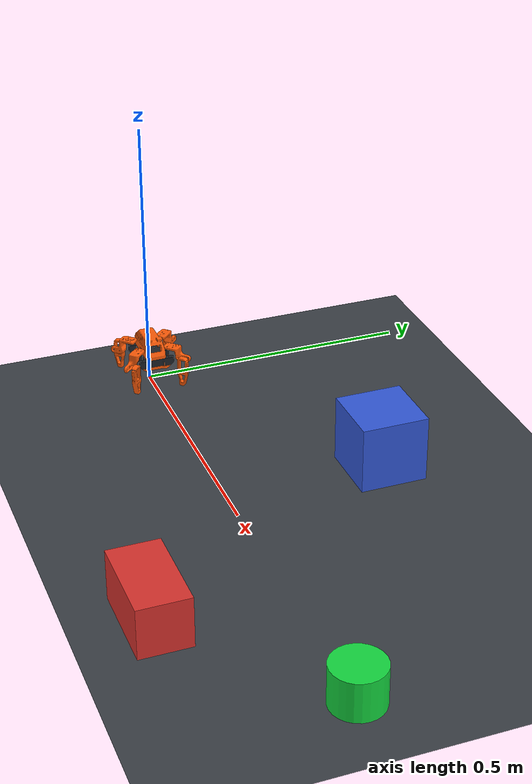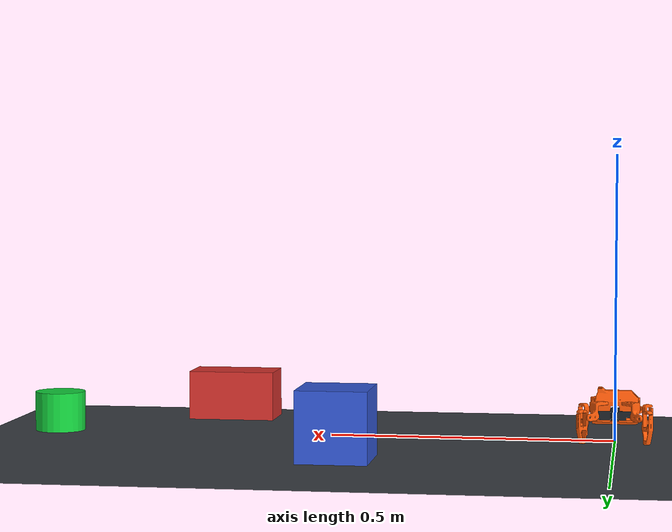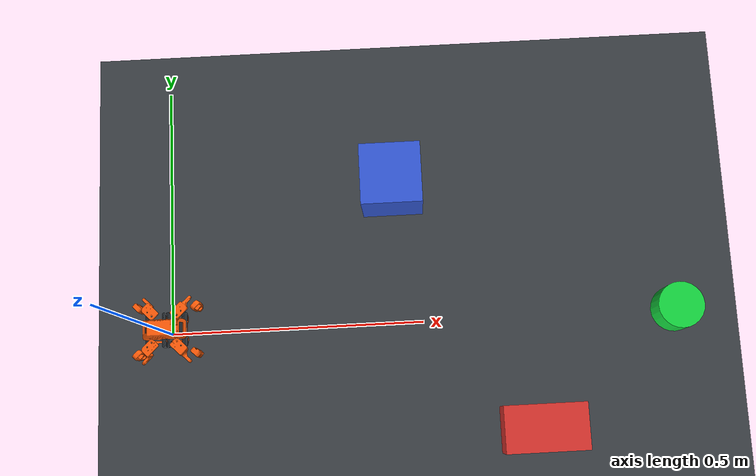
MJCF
<mujoco model="sesame_quadruped">
  <compiler angle="radian" coordinate="local" autolimits="true" inertiafromgeom="false"/>
  <option timestep="0.002" integrator="implicitfast" cone="elliptic" iterations="50"
          ls_iterations="10" gravity="0 0 -9.81"/>
  <size njmax="1000" nconmax="200"/>

  <visual>
    <global offwidth="640" offheight="480" azimuth="135" elevation="-25"/>
    <quality shadowsize="2048"/>
    <headlight ambient="0.35 0.35 0.35" diffuse="0.7 0.7 0.7" specular="0.2 0.2 0.2"/>
  </visual>

  <default>
    <default class="visual">
      <geom type="mesh" contype="0" conaffinity="0" group="2" density="0"/>
    </default>
    <default class="collision">
      <geom contype="1" conaffinity="1" group="3" condim="4" friction="0.9 0.02 0.002"
            solref="0.004 1" solimp="0.95 0.99 0.001" density="0" rgba="0 0 0 0"/>
    </default>
    <default class="servo">
      <joint type="hinge" axis="0 0 -1" limited="true" damping="0.0025" armature="0.00002"
             frictionloss="0.002"/>
    </default>
    <default class="foot">
      <geom type="sphere" size="0.007" contype="1" conaffinity="1" group="3" condim="6"
            friction="1.1 0.003 0.0002" solref="0.004 1" solimp="0.95 0.99 0.001"
            density="0" rgba="0.12 0.12 0.12 1"/>
      <site type="sphere" size="0.008" rgba="0 0 0 0" group="4"/>
    </default>
  </default>

  <!-- Printing STLs are millimetres in x-right/y-up/z-depth. Rx(+90deg) converts them
       to the CAD/MuJoCo x/y/z convention. The loader supplies these repository assets. -->
  <asset>
    <texture name="skybox" type="skybox" builtin="gradient" rgb1="0.38 0.48 0.60"
             rgb2="0.06 0.07 0.09" width="512" height="3072"/>
    <texture name="ground_tex" type="2d" builtin="checker" rgb1="0.18 0.20 0.22"
             rgb2="0.28 0.30 0.32" width="512" height="512"/>
    <material name="ground_mat" texture="ground_tex" texrepeat="8 8" reflectance="0.08"/>
    <material name="orange" rgba="1 0.36 0.035 1" roughness="0.72"/>
    <material name="charcoal" rgba="0.12 0.14 0.16 1" roughness="0.78"/>
    <material name="goal_mat" rgba="0.08 0.85 0.25 1" emission="0.15"/>

    <mesh name="internal_frame_mesh" file="Internal-Frame-v121.stl" scale="0.001 0.001 0.001"/>
    <mesh name="bottom_cover_mesh" file="Bottom-Cover-v121.stl" scale="0.001 0.001 0.001"/>
    <mesh name="top_cover_mesh" file="Top-Cover-Enclosed-v117.stl" scale="0.001 0.001 0.001"/>
    <mesh name="l1_mesh" file="L1-v117.stl" scale="0.001 0.001 0.001"/>
    <mesh name="l2_mesh" file="L2-v117.stl" scale="0.001 0.001 0.001"/>
    <mesh name="l3_mesh" file="L3-v117.stl" scale="0.001 0.001 0.001"/>
    <mesh name="l4_mesh" file="L4-v117.stl" scale="0.001 0.001 0.001"/>
    <mesh name="r1_mesh" file="R1-v117.stl" scale="0.001 0.001 0.001"/>
    <mesh name="r2_mesh" file="R2-v117.stl" scale="0.001 0.001 0.001"/>
    <mesh name="r3_mesh" file="R3-v117.stl" scale="0.001 0.001 0.001"/>
    <mesh name="r4_mesh" file="R4-v117.stl" scale="0.001 0.001 0.001"/>
  </asset>

  <worldbody>
    <light name="key" pos="-1 -1 2.5" dir="0.4 0.4 -1" directional="true" castshadow="true"/>
    <light name="fill" pos="1 1 1.2" dir="-0.5 -0.3 -1" directional="true" diffuse="0.35 0.38 0.42"/>
    <geom name="floor" type="plane" size="8 8 0.1" material="ground_mat" contype="1"
          conaffinity="1" condim="4" friction="1.0 0.02 0.002"/>

    <body name="target" mocap="true" pos="1 0 0.035">
      <geom name="target_visual" type="cylinder" size="0.045 0.035" material="goal_mat"
            contype="0" conaffinity="0" group="2"/>
      <site name="goal" pos="0 0 0" size="0.006" rgba="0 1 0 0"/>
    </body>

    <body name="obstacle_0" pos="0.45 0.28 0.06">
      <geom type="box" size="0.06 0.06 0.06" rgba="0.2 0.35 0.85 1" friction="0.9"/>
    </body>
    <body name="obstacle_1" pos="0.72 -0.22 0.045">
      <geom type="box" size="0.08 0.045 0.045" rgba="0.85 0.2 0.18 1" friction="0.9"/>
    </body>

    <body name="base" pos="0 0 0.049">
      <freejoint name="root"/>
      <inertial pos="0 0 0.006" mass="0.280" diaginertia="0.000143 0.000178 0.000264"/>

      <geom name="body_collision" class="collision" type="box" pos="0.001 0.004 0.0145"
            size="0.042 0.034 0.031"/>
      <geom name="internal_frame_visual" class="visual" mesh="internal_frame_mesh"
            pos="0.0256198 0.00238918 -0.0151121"
            quat="0 0 0.707106781 0.707106781" material="charcoal"/>
      <geom name="bottom_cover_visual" class="visual" mesh="bottom_cover_mesh"
            pos="0.0256198 0.00238918 -0.0151121"
            quat="0 0 0.707106781 0.707106781" material="orange"/>
      <geom name="top_cover_visual" class="visual" mesh="top_cover_mesh"
            pos="0.0256198 0.00238918 -0.0151121"
            quat="0 0 0.707106781 0.707106781" material="orange"/>

      <site name="imu" pos="0 0 0.025" size="0.004" rgba="0.2 0.8 1 0.35" group="4"/>
      <camera name="front_camera" pos="0.048 0 0.030"
              xyaxes="0 -1 0 0.342 0 0.940" fovy="82"/>

      <!-- Front right: R1 -> R3. -->
      <body name="r1_link" pos="0.0240966 -0.0206276 0.0179057" quat="0 0 1 0">
        <inertial pos="-0.010 -0.016 0.005" mass="0.020" diaginertia="0.0000022 0.0000048 0.0000057"/>
        <joint name="R1" class="servo" range="0.785398163 3.141592654" ref="2.356194490"/>
        <geom name="r1_visual" class="visual" mesh="r1_mesh"
              pos="0.0173524 0.0151982 0.0330178"
              quat="-0.27059805 0.27059805 0.653281482 -0.653281482" material="orange"/>
        <geom name="r1_collision" class="collision" type="capsule"
              fromto="0 0 0 -0.0207104 -0.0313751 0.01779" size="0.010"/>
        <body name="r3_link" pos="-0.0207104 -0.0313751 0.01779"
              quat="0.27059805 -0.27059805 0.653281482 -0.653281482">
          <inertial pos="-0.002 -0.024 -0.016" mass="0.006" diaginertia="0.00000023 0.00000175 0.00000186"/>
        <joint name="R3" class="servo" range="-0.087266463 3.228859116" ref="3.141592654"/>
          <geom name="r3_visual" class="visual" mesh="r3_mesh"
                pos="-0.0152278 0.0598468 -0.00728707"
                quat="0.5 0.5 0.5 -0.5" material="orange"/>
          <geom name="r3_shin" class="collision" type="capsule"
                fromto="0 0 0 -0.0016 -0.04006 -0.016" size="0.006"/>
          <geom name="r3_foot" class="foot" pos="-0.0016 -0.04006 -0.016"/>
          <site name="r3_contact" class="foot" pos="-0.0016 -0.04006 -0.016"/>
        </body>
      </body>

      <!-- Rear right: R2 -> R4. -->
      <body name="r2_link" pos="-0.0243034 -0.0206276 0.0179057" quat="0 1 0 0">
        <inertial pos="-0.010 0.016 0.005" mass="0.020" diaginertia="0.0000022 0.0000048 0.0000057"/>
        <joint name="R2" class="servo" range="0 2.356194490" ref="0.785398163"/>
        <geom name="r2_visual" class="visual" mesh="r2_mesh"
              pos="0.0173524 -0.0151982 0.0330178"
              quat="0.27059805 -0.27059805 0.653281482 -0.653281482" material="orange"/>
        <geom name="r2_collision" class="collision" type="capsule"
              fromto="0 0 0 -0.0207104 0.0313751 0.01779" size="0.010"/>
        <body name="r4_link" pos="-0.0207104 0.0313751 0.01779"
              quat="0.27059805 0.27059805 0.653281482 0.653281482">
          <inertial pos="-0.002 0.024 -0.016" mass="0.006" diaginertia="0.00000023 0.00000175 0.00000186"/>
          <joint name="R4" class="servo" range="-0.087266463 3.228859116" ref="0"/>
          <geom name="r4_visual" class="visual" mesh="r4_mesh"
                pos="-0.0152278 -0.0598468 -0.00728707"
                quat="0.5 0.5 0.5 -0.5" material="orange"/>
          <geom name="r4_shin" class="collision" type="capsule"
                fromto="0 0 0 -0.0016 0.04006 -0.016" size="0.006"/>
          <geom name="r4_foot" class="foot" pos="-0.0016 0.04006 -0.016"/>
          <site name="r4_contact" class="foot" pos="-0.0016 0.04006 -0.016"/>
        </body>
      </body>

      <!-- Front left: L1 -> L3. -->
      <body name="l1_link" pos="0.0240966 0.0301724 0.0179057" quat="0 0 1 0">
        <inertial pos="-0.010 0.016 0.005" mass="0.020" diaginertia="0.0000022 0.0000048 0.0000057"/>
        <joint name="L1" class="servo" range="0 2.356194490" ref="0.785398163"/>
        <geom name="l1_visual" class="visual" mesh="l1_mesh"
              pos="0.0173524 -0.0151982 0.0330178"
              quat="-0.27059805 0.27059805 -0.653281482 0.653281482" material="orange"/>
        <geom name="l1_collision" class="collision" type="capsule"
              fromto="0 0 0 -0.0207104 0.0313751 0.01779" size="0.010"/>
        <body name="l3_link" pos="-0.0207104 0.0313751 0.01779"
              quat="0.27059805 0.27059805 0.653281482 0.653281482">
          <inertial pos="-0.002 0.024 -0.016" mass="0.006" diaginertia="0.00000023 0.00000175 0.00000186"/>
          <joint name="L3" class="servo" range="-0.087266463 3.228859116" ref="0"/>
          <geom name="l3_visual" class="visual" mesh="l3_mesh"
                pos="-0.0152278 -0.0598468 -0.00728707"
                quat="0.5 0.5 0.5 -0.5" material="orange"/>
          <geom name="l3_shin" class="collision" type="capsule"
                fromto="0 0 0 -0.0016 0.04006 -0.016" size="0.006"/>
          <geom name="l3_foot" class="foot" pos="-0.0016 0.04006 -0.016"/>
          <site name="l3_contact" class="foot" pos="-0.0016 0.04006 -0.016"/>
        </body>
      </body>

      <!-- Rear left: L2 -> L4. -->
      <body name="l2_link" pos="-0.0243034 0.0301724 0.0179057" quat="0 1 0 0">
        <inertial pos="-0.010 -0.016 0.005" mass="0.020" diaginertia="0.0000022 0.0000048 0.0000057"/>
        <joint name="L2" class="servo" range="0.785398163 3.141592654" ref="2.356194490"/>
        <geom name="l2_visual" class="visual" mesh="l2_mesh"
              pos="0.0173524 0.0151982 0.0330178"
              quat="-0.27059805 0.27059805 0.653281482 -0.653281482" material="orange"/>
        <geom name="l2_collision" class="collision" type="capsule"
              fromto="0 0 0 -0.0207104 -0.0313751 0.01779" size="0.010"/>
        <body name="l4_link" pos="-0.0207104 -0.0313751 0.01779"
              quat="0.27059805 -0.27059805 0.653281482 -0.653281482">
          <inertial pos="-0.002 -0.024 -0.016" mass="0.006" diaginertia="0.00000023 0.00000175 0.00000186"/>
          <joint name="L4" class="servo" range="-0.087266463 3.228859116" ref="3.141592654"/>
          <geom name="l4_visual" class="visual" mesh="l4_mesh"
                pos="-0.0152278 0.0598468 -0.00728707"
                quat="0.5 0.5 0.5 -0.5" material="orange"/>
          <geom name="l4_shin" class="collision" type="capsule"
                fromto="0 0 0 -0.0016 -0.04006 -0.016" size="0.006"/>
          <geom name="l4_foot" class="foot" pos="-0.0016 -0.04006 -0.016"/>
          <site name="l4_contact" class="foot" pos="-0.0016 -0.04006 -0.016"/>
        </body>
      </body>
    </body>
  </worldbody>

  <!-- Actuator order is deliberately identical to the firmware channel order. -->
  <actuator>
    <position name="R1_servo" joint="R1" kp="5" ctrlrange="0.785398163 3.141592654"
              forcerange="-0.18 0.18"/>
    <position name="R2_servo" joint="R2" kp="5" ctrlrange="0 2.356194490"
              forcerange="-0.18 0.18"/>
    <position name="L1_servo" joint="L1" kp="5" ctrlrange="0 2.356194490"
              forcerange="-0.18 0.18"/>
    <position name="L2_servo" joint="L2" kp="5" ctrlrange="0.785398163 3.141592654"
              forcerange="-0.18 0.18"/>
    <position name="R4_servo" joint="R4" kp="5" ctrlrange="0 3.141592654"
              forcerange="-0.18 0.18"/>
    <position name="R3_servo" joint="R3" kp="5" ctrlrange="0 3.141592654"
              forcerange="-0.18 0.18"/>
    <position name="L3_servo" joint="L3" kp="5" ctrlrange="0 3.141592654"
              forcerange="-0.18 0.18"/>
    <position name="L4_servo" joint="L4" kp="5" ctrlrange="0 3.141592654"
              forcerange="-0.18 0.18"/>
  </actuator>

  <sensor>
    <framequat name="imu_quat" objtype="site" objname="imu"/>
    <gyro name="imu_gyro" site="imu" noise="0.003" cutoff="35"/>
    <accelerometer name="imu_accel" site="imu" noise="0.02" cutoff="35"/>
    <velocimeter name="imu_velocity" site="imu" noise="0.002" cutoff="35"/>
    <touch name="r3_touch" site="r3_contact"/>
    <touch name="r4_touch" site="r4_contact"/>
    <touch name="l3_touch" site="l3_contact"/>
    <touch name="l4_touch" site="l4_contact"/>
  </sensor>
</mujoco>
